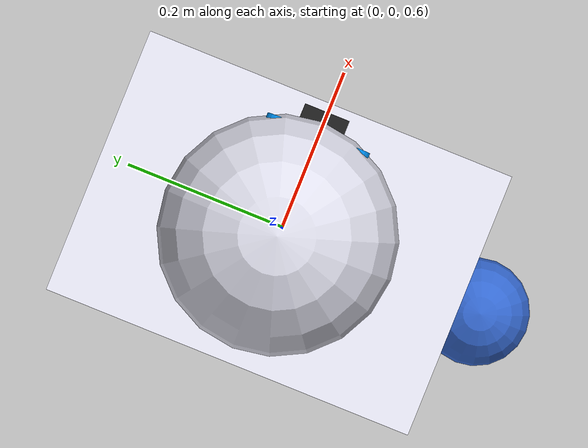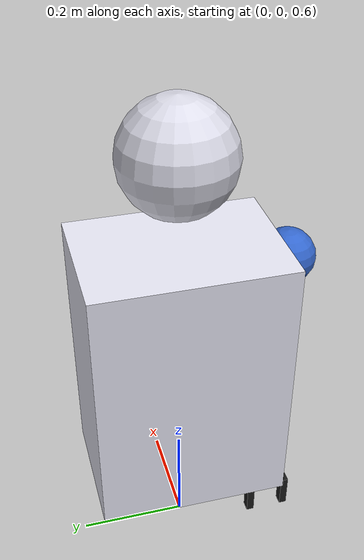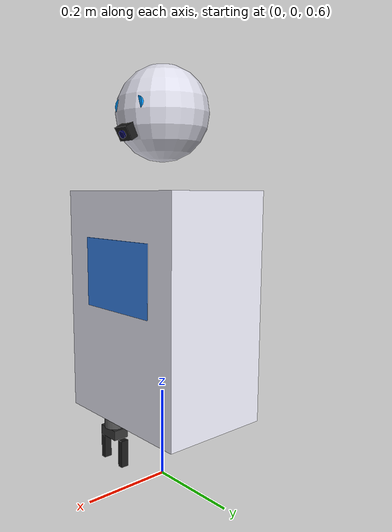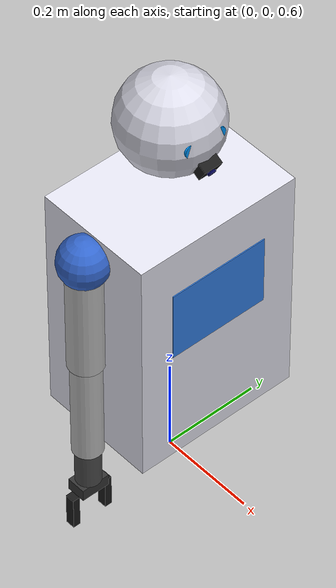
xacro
<?xml version="1.0"?>
<!--
  Main Humanoid Robot Description
  Assembles: torso + head + arm + gripper + camera + ros2_control
-->
<robot name="humanoid_robot" xmlns:xacro="http://www.ros.org/wiki/xacro">

  <!-- ==================== INCLUDES ==================== -->
  <xacro:include filename="$(find humanoid_description)/urdf/arm.xacro"/>
  <xacro:include filename="$(find humanoid_description)/urdf/gripper.xacro"/>
  <xacro:include filename="$(find humanoid_description)/urdf/camera.xacro"/>
  <xacro:include filename="$(find humanoid_description)/urdf/ros2_control.xacro"/>

  <!-- ==================== PARAMETERS ==================== -->
  <xacro:arg name="prefix" default=""/>
  <xacro:property name="prefix" value="$(arg prefix)"/>

  <!-- Torso dimensions -->
  <xacro:property name="torso_width" value="0.35"/>
  <xacro:property name="torso_depth" value="0.25"/>
  <xacro:property name="torso_height" value="0.50"/>

  <!-- Head dimensions -->
  <xacro:property name="head_radius" value="0.10"/>
  <xacro:property name="neck_height" value="0.06"/>

  <!-- ==================== MATERIALS ==================== -->
  <material name="torso_white">
    <color rgba="0.9 0.9 0.95 1.0"/>
  </material>
  <material name="torso_accent">
    <color rgba="0.2 0.5 0.9 1.0"/>
  </material>
  <material name="head_color">
    <color rgba="0.85 0.85 0.9 1.0"/>
  </material>
  <material name="eye_color">
    <color rgba="0.0 0.6 1.0 1.0"/>
  </material>

  <!-- ==================== WORLD LINK (for Gazebo) ==================== -->
  <link name="world"/>

  <joint name="world_to_base" type="fixed">
    <origin xyz="0 0 0.75" rpy="0 0 0"/>
    <parent link="world"/>
    <child link="${prefix}base_link"/>
  </joint>

  <!-- ==================== BASE LINK / TORSO ==================== -->
  <link name="${prefix}base_link">
    <!-- Main torso body -->
    <visual>
      <origin xyz="0 0 ${torso_height/2}" rpy="0 0 0"/>
      <geometry>
        <box size="${torso_depth} ${torso_width} ${torso_height}"/>
      </geometry>
      <material name="torso_white"/>
    </visual>
    <!-- Chest accent panel -->
    <visual>
      <origin xyz="${torso_depth/2 + 0.001} 0 ${torso_height * 0.65}" rpy="0 0 0"/>
      <geometry>
        <box size="0.002 ${torso_width * 0.6} ${torso_height * 0.3}"/>
      </geometry>
      <material name="torso_accent"/>
    </visual>
    <collision>
      <origin xyz="0 0 ${torso_height/2}" rpy="0 0 0"/>
      <geometry>
        <box size="${torso_depth} ${torso_width} ${torso_height}"/>
      </geometry>
    </collision>
    <inertial>
      <origin xyz="0 0 ${torso_height/2}" rpy="0 0 0"/>
      <mass value="15.0"/>
      <inertia ixx="0.5" ixy="0" ixz="0" iyy="0.4" iyz="0" izz="0.3"/>
    </inertial>
  </link>

  <!-- ==================== NECK + HEAD ==================== -->
  <joint name="${prefix}neck_joint" type="fixed">
    <origin xyz="0 0 ${torso_height + neck_height}" rpy="0 0 0"/>
    <parent link="${prefix}base_link"/>
    <child link="${prefix}head_link"/>
  </joint>

  <link name="${prefix}head_link">
    <!-- Head sphere -->
    <visual>
      <origin xyz="0 0 ${head_radius}" rpy="0 0 0"/>
      <geometry>
        <sphere radius="${head_radius}"/>
      </geometry>
      <material name="head_color"/>
    </visual>
    <!-- Left eye -->
    <visual>
      <origin xyz="${head_radius * 0.85} ${head_radius * 0.3} ${head_radius * 1.1}" rpy="0 ${pi/2} 0"/>
      <geometry>
        <cylinder radius="0.015" length="0.01"/>
      </geometry>
      <material name="eye_color"/>
    </visual>
    <!-- Right eye -->
    <visual>
      <origin xyz="${head_radius * 0.85} ${-head_radius * 0.3} ${head_radius * 1.1}" rpy="0 ${pi/2} 0"/>
      <geometry>
        <cylinder radius="0.015" length="0.01"/>
      </geometry>
      <material name="eye_color"/>
    </visual>
    <collision>
      <origin xyz="0 0 ${head_radius}" rpy="0 0 0"/>
      <geometry>
        <sphere radius="${head_radius}"/>
      </geometry>
    </collision>
    <inertial>
      <origin xyz="0 0 ${head_radius}" rpy="0 0 0"/>
      <mass value="2.0"/>
      <inertia ixx="0.01" ixy="0" ixz="0" iyy="0.01" iyz="0" izz="0.01"/>
    </inertial>
  </link>

  <!-- ==================== RIGHT ARM (attached to right shoulder) ==================== -->
  <xacro:humanoid_arm prefix="${prefix}" parent_link="${prefix}base_link">
    <origin xyz="0 ${-(torso_width/2 + 0.02)} ${torso_height - 0.05}" rpy="0 0 0"/>
  </xacro:humanoid_arm>

  <!-- ==================== GRIPPER (attached to arm tool0) ==================== -->
  <xacro:humanoid_gripper prefix="${prefix}" parent_link="${prefix}tool0">
    <origin xyz="0 0 0" rpy="0 0 0"/>
  </xacro:humanoid_gripper>

  <!-- ==================== CAMERA (on head, looking forward-down) ==================== -->
  <xacro:humanoid_camera prefix="${prefix}" parent_link="${prefix}head_link">
    <origin xyz="${head_radius * 0.9} 0 ${head_radius * 0.6}" rpy="0 ${pi/6} 0"/>
  </xacro:humanoid_camera>

  <!-- ==================== ROS2 CONTROL ==================== -->
  <xacro:humanoid_ros2_control prefix="${prefix}"/>

  <!-- ==================== GAZEBO PLUGIN ==================== -->
  <gazebo>
    <plugin filename="gz_ros2_control-system" name="gz_ros2_control::GazeboSimROS2ControlPlugin">
      <parameters>$(find humanoid_gazebo)/config/controllers.yaml</parameters>
    </plugin>
  </gazebo>

  <!-- ==================== GAZEBO MATERIALS ==================== -->
  <gazebo reference="${prefix}base_link">
    <visual>
      <material>
        <ambient>0.9 0.9 0.95 1.0</ambient>
        <diffuse>0.9 0.9 0.95 1.0</diffuse>
        <specular>0.5 0.5 0.5 1.0</specular>
      </material>
    </visual>
  </gazebo>

  <gazebo reference="${prefix}head_link">
    <visual>
      <material>
        <ambient>0.85 0.85 0.9 1.0</ambient>
        <diffuse>0.85 0.85 0.9 1.0</diffuse>
      </material>
    </visual>
  </gazebo>

  <gazebo reference="${prefix}upper_arm_link">
    <visual>
      <material>
        <ambient>0.75 0.75 0.75 1.0</ambient>
        <diffuse>0.75 0.75 0.75 1.0</diffuse>
        <specular>0.6 0.6 0.6 1.0</specular>
      </material>
    </visual>
  </gazebo>

  <gazebo reference="${prefix}forearm_link">
    <visual>
      <material>
        <ambient>0.75 0.75 0.75 1.0</ambient>
        <diffuse>0.75 0.75 0.75 1.0</diffuse>
        <specular>0.6 0.6 0.6 1.0</specular>
      </material>
    </visual>
  </gazebo>

  <!-- Gripper finger friction for grasping -->
  <gazebo reference="${prefix}left_finger_link">
    <collision>
      <surface>
        <friction>
          <ode>
            <mu>1.0</mu>
            <mu2>1.0</mu2>
          </ode>
        </friction>
      </surface>
    </collision>
  </gazebo>

  <gazebo reference="${prefix}right_finger_link">
    <collision>
      <surface>
        <friction>
          <ode>
            <mu>1.0</mu>
            <mu2>1.0</mu2>
          </ode>
        </friction>
      </surface>
    </collision>
  </gazebo>

</robot>

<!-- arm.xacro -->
<!--
  Humanoid Robot Arm - 6-DOF Serial Manipulator
  Shoulder: pitch, roll, yaw
  Elbow: pitch
  Wrist: pitch, roll
-->
<robot xmlns:xacro="http://www.ros.org/wiki/xacro">

  <xacro:macro name="humanoid_arm" params="prefix parent_link *origin">

    <!-- ==================== MATERIALS ==================== -->
    <material name="${prefix}arm_dark_grey">
      <color rgba="0.3 0.3 0.3 1.0"/>
    </material>
    <material name="${prefix}arm_silver">
      <color rgba="0.75 0.75 0.75 1.0"/>
    </material>
    <material name="${prefix}arm_blue">
      <color rgba="0.2 0.4 0.8 1.0"/>
    </material>

    <!-- ==================== LINK PROPERTIES ==================== -->
    <xacro:property name="shoulder_radius" value="0.05"/>
    <xacro:property name="upper_arm_length" value="0.25"/>
    <xacro:property name="upper_arm_radius" value="0.035"/>
    <xacro:property name="forearm_length" value="0.22"/>
    <xacro:property name="forearm_radius" value="0.03"/>
    <xacro:property name="wrist_radius" value="0.025"/>
    <xacro:property name="wrist_length" value="0.08"/>

    <!-- ==================== SHOULDER PITCH (Joint 1) ==================== -->
    <joint name="${prefix}shoulder_pitch_joint" type="revolute">
      <xacro:insert_block name="origin"/>
      <parent link="${parent_link}"/>
      <child link="${prefix}shoulder_pitch_link"/>
      <axis xyz="0 1 0"/>
      <limit lower="${-pi}" upper="${pi}" effort="100.0" velocity="1.5"/>
      <dynamics damping="0.5" friction="0.1"/>
    </joint>

    <link name="${prefix}shoulder_pitch_link">
      <visual>
        <geometry>
          <sphere radius="${shoulder_radius}"/>
        </geometry>
        <material name="${prefix}arm_blue"/>
      </visual>
      <collision>
        <geometry>
          <sphere radius="${shoulder_radius}"/>
        </geometry>
      </collision>
      <inertial>
        <mass value="1.5"/>
        <inertia ixx="0.002" ixy="0" ixz="0" iyy="0.002" iyz="0" izz="0.002"/>
      </inertial>
    </link>

    <!-- ==================== SHOULDER ROLL (Joint 2) ==================== -->
    <joint name="${prefix}shoulder_roll_joint" type="revolute">
      <origin xyz="0 0 0" rpy="0 0 0"/>
      <parent link="${prefix}shoulder_pitch_link"/>
      <child link="${prefix}shoulder_roll_link"/>
      <axis xyz="1 0 0"/>
      <limit lower="${-pi/2}" upper="${pi/2}" effort="100.0" velocity="1.5"/>
      <dynamics damping="0.5" friction="0.1"/>
    </joint>

    <link name="${prefix}shoulder_roll_link">
      <visual>
        <origin xyz="0 0 0" rpy="0 0 0"/>
        <geometry>
          <cylinder radius="${shoulder_radius * 0.8}" length="0.04"/>
        </geometry>
        <material name="${prefix}arm_dark_grey"/>
      </visual>
      <collision>
        <geometry>
          <cylinder radius="${shoulder_radius * 0.8}" length="0.04"/>
        </geometry>
      </collision>
      <inertial>
        <mass value="0.8"/>
        <inertia ixx="0.001" ixy="0" ixz="0" iyy="0.001" iyz="0" izz="0.001"/>
      </inertial>
    </link>

    <!-- ==================== SHOULDER YAW (Joint 3) ==================== -->
    <joint name="${prefix}shoulder_yaw_joint" type="revolute">
      <origin xyz="0 0 0" rpy="0 0 0"/>
      <parent link="${prefix}shoulder_roll_link"/>
      <child link="${prefix}upper_arm_link"/>
      <axis xyz="0 0 1"/>
      <limit lower="${-pi}" upper="${pi}" effort="80.0" velocity="1.5"/>
      <dynamics damping="0.5" friction="0.1"/>
    </joint>

    <link name="${prefix}upper_arm_link">
      <visual>
        <origin xyz="0 0 ${-upper_arm_length/2}" rpy="0 0 0"/>
        <geometry>
          <cylinder radius="${upper_arm_radius}" length="${upper_arm_length}"/>
        </geometry>
        <material name="${prefix}arm_silver"/>
      </visual>
      <collision>
        <origin xyz="0 0 ${-upper_arm_length/2}" rpy="0 0 0"/>
        <geometry>
          <cylinder radius="${upper_arm_radius}" length="${upper_arm_length}"/>
        </geometry>
      </collision>
      <inertial>
        <origin xyz="0 0 ${-upper_arm_length/2}" rpy="0 0 0"/>
        <mass value="2.0"/>
        <inertia ixx="0.01" ixy="0" ixz="0" iyy="0.01" iyz="0" izz="0.002"/>
      </inertial>
    </link>

    <!-- ==================== ELBOW PITCH (Joint 4) ==================== -->
    <joint name="${prefix}elbow_pitch_joint" type="revolute">
      <origin xyz="0 0 ${-upper_arm_length}" rpy="0 0 0"/>
      <parent link="${prefix}upper_arm_link"/>
      <child link="${prefix}forearm_link"/>
      <axis xyz="0 1 0"/>
      <limit lower="0" upper="${pi * 0.85}" effort="80.0" velocity="1.5"/>
      <dynamics damping="0.3" friction="0.1"/>
    </joint>

    <link name="${prefix}forearm_link">
      <visual>
        <origin xyz="0 0 ${-forearm_length/2}" rpy="0 0 0"/>
        <geometry>
          <cylinder radius="${forearm_radius}" length="${forearm_length}"/>
        </geometry>
        <material name="${prefix}arm_silver"/>
      </visual>
      <collision>
        <origin xyz="0 0 ${-forearm_length/2}" rpy="0 0 0"/>
        <geometry>
          <cylinder radius="${forearm_radius}" length="${forearm_length}"/>
        </geometry>
      </collision>
      <inertial>
        <origin xyz="0 0 ${-forearm_length/2}" rpy="0 0 0"/>
        <mass value="1.5"/>
        <inertia ixx="0.006" ixy="0" ixz="0" iyy="0.006" iyz="0" izz="0.001"/>
      </inertial>
    </link>

    <!-- ==================== WRIST PITCH (Joint 5) ==================== -->
    <joint name="${prefix}wrist_pitch_joint" type="revolute">
      <origin xyz="0 0 ${-forearm_length}" rpy="0 0 0"/>
      <parent link="${prefix}forearm_link"/>
      <child link="${prefix}wrist_pitch_link"/>
      <axis xyz="0 1 0"/>
      <limit lower="${-pi/2}" upper="${pi/2}" effort="40.0" velocity="2.0"/>
      <dynamics damping="0.2" friction="0.05"/>
    </joint>

    <link name="${prefix}wrist_pitch_link">
      <visual>
        <geometry>
          <sphere radius="${wrist_radius}"/>
        </geometry>
        <material name="${prefix}arm_blue"/>
      </visual>
      <collision>
        <geometry>
          <sphere radius="${wrist_radius}"/>
        </geometry>
      </collision>
      <inertial>
        <mass value="0.5"/>
        <inertia ixx="0.0003" ixy="0" ixz="0" iyy="0.0003" iyz="0" izz="0.0003"/>
      </inertial>
    </link>

    <!-- ==================== WRIST ROLL (Joint 6) ==================== -->
    <joint name="${prefix}wrist_roll_joint" type="revolute">
      <origin xyz="0 0 0" rpy="0 0 0"/>
      <parent link="${prefix}wrist_pitch_link"/>
      <child link="${prefix}wrist_roll_link"/>
      <axis xyz="0 0 1"/>
      <limit lower="${-pi}" upper="${pi}" effort="20.0" velocity="2.5"/>
      <dynamics damping="0.1" friction="0.05"/>
    </joint>

    <link name="${prefix}wrist_roll_link">
      <visual>
        <origin xyz="0 0 ${-wrist_length/2}" rpy="0 0 0"/>
        <geometry>
          <cylinder radius="${wrist_radius}" length="${wrist_length}"/>
        </geometry>
        <material name="${prefix}arm_dark_grey"/>
      </visual>
      <collision>
        <origin xyz="0 0 ${-wrist_length/2}" rpy="0 0 0"/>
        <geometry>
          <cylinder radius="${wrist_radius}" length="${wrist_length}"/>
        </geometry>
      </collision>
      <inertial>
        <origin xyz="0 0 ${-wrist_length/2}" rpy="0 0 0"/>
        <mass value="0.3"/>
        <inertia ixx="0.0002" ixy="0" ixz="0" iyy="0.0002" iyz="0" izz="0.0001"/>
      </inertial>
    </link>

    <!-- Tool center point (end effector mounting point) -->
    <joint name="${prefix}tool0_joint" type="fixed">
      <origin xyz="0 0 ${-wrist_length}" rpy="0 0 0"/>
      <parent link="${prefix}wrist_roll_link"/>
      <child link="${prefix}tool0"/>
    </joint>

    <link name="${prefix}tool0"/>

  </xacro:macro>
</robot>

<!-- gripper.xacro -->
<!--
  2-Finger Parallel Gripper
  Prismatic joints for open/close
-->
<robot xmlns:xacro="http://www.ros.org/wiki/xacro">

  <xacro:macro name="humanoid_gripper" params="prefix parent_link *origin">

    <!-- ==================== PROPERTIES ==================== -->
    <xacro:property name="palm_width" value="0.06"/>
    <xacro:property name="palm_depth" value="0.04"/>
    <xacro:property name="palm_height" value="0.025"/>
    <xacro:property name="finger_length" value="0.07"/>
    <xacro:property name="finger_width" value="0.015"/>
    <xacro:property name="finger_depth" value="0.02"/>
    <xacro:property name="finger_max_open" value="0.04"/>

    <!-- ==================== MATERIALS ==================== -->
    <material name="${prefix}gripper_dark">
      <color rgba="0.2 0.2 0.2 1.0"/>
    </material>
    <material name="${prefix}gripper_rubber">
      <color rgba="0.1 0.1 0.1 1.0"/>
    </material>

    <!-- ==================== PALM ==================== -->
    <joint name="${prefix}gripper_base_joint" type="fixed">
      <xacro:insert_block name="origin"/>
      <parent link="${parent_link}"/>
      <child link="${prefix}gripper_base_link"/>
    </joint>

    <link name="${prefix}gripper_base_link">
      <visual>
        <origin xyz="0 0 ${-palm_height/2}" rpy="0 0 0"/>
        <geometry>
          <box size="${palm_depth} ${palm_width} ${palm_height}"/>
        </geometry>
        <material name="${prefix}gripper_dark"/>
      </visual>
      <collision>
        <origin xyz="0 0 ${-palm_height/2}" rpy="0 0 0"/>
        <geometry>
          <box size="${palm_depth} ${palm_width} ${palm_height}"/>
        </geometry>
      </collision>
      <inertial>
        <origin xyz="0 0 ${-palm_height/2}" rpy="0 0 0"/>
        <mass value="0.3"/>
        <inertia ixx="0.0001" ixy="0" ixz="0" iyy="0.0001" iyz="0" izz="0.0001"/>
      </inertial>
    </link>

    <!-- ==================== LEFT FINGER ==================== -->
    <joint name="${prefix}left_finger_joint" type="prismatic">
      <origin xyz="0 ${palm_width/2} ${-palm_height}" rpy="0 0 0"/>
      <parent link="${prefix}gripper_base_link"/>
      <child link="${prefix}left_finger_link"/>
      <axis xyz="0 1 0"/>
      <limit lower="0" upper="${finger_max_open}" effort="20.0" velocity="0.5"/>
      <dynamics damping="0.1" friction="0.05"/>
    </joint>

    <link name="${prefix}left_finger_link">
      <visual>
        <origin xyz="0 ${finger_width/2} ${-finger_length/2}" rpy="0 0 0"/>
        <geometry>
          <box size="${finger_depth} ${finger_width} ${finger_length}"/>
        </geometry>
        <material name="${prefix}gripper_rubber"/>
      </visual>
      <collision>
        <origin xyz="0 ${finger_width/2} ${-finger_length/2}" rpy="0 0 0"/>
        <geometry>
          <box size="${finger_depth} ${finger_width} ${finger_length}"/>
        </geometry>
      </collision>
      <inertial>
        <origin xyz="0 ${finger_width/2} ${-finger_length/2}" rpy="0 0 0"/>
        <mass value="0.05"/>
        <inertia ixx="0.00001" ixy="0" ixz="0" iyy="0.00001" iyz="0" izz="0.00001"/>
      </inertial>
    </link>

    <!-- Left finger tip (for grasp contact) -->
    <joint name="${prefix}left_finger_tip_joint" type="fixed">
      <origin xyz="0 ${finger_width/2} ${-finger_length}" rpy="0 0 0"/>
      <parent link="${prefix}left_finger_link"/>
      <child link="${prefix}left_finger_tip"/>
    </joint>
    <link name="${prefix}left_finger_tip"/>

    <!-- ==================== RIGHT FINGER ==================== -->
    <joint name="${prefix}right_finger_joint" type="prismatic">
      <origin xyz="0 ${-palm_width/2} ${-palm_height}" rpy="0 0 0"/>
      <parent link="${prefix}gripper_base_link"/>
      <child link="${prefix}right_finger_link"/>
      <axis xyz="0 -1 0"/>
      <limit lower="0" upper="${finger_max_open}" effort="20.0" velocity="0.5"/>
      <mimic joint="${prefix}left_finger_joint" multiplier="1.0" offset="0.0"/>
      <dynamics damping="0.1" friction="0.05"/>
    </joint>

    <link name="${prefix}right_finger_link">
      <visual>
        <origin xyz="0 ${-finger_width/2} ${-finger_length/2}" rpy="0 0 0"/>
        <geometry>
          <box size="${finger_depth} ${finger_width} ${finger_length}"/>
        </geometry>
        <material name="${prefix}gripper_rubber"/>
      </visual>
      <collision>
        <origin xyz="0 ${-finger_width/2} ${-finger_length/2}" rpy="0 0 0"/>
        <geometry>
          <box size="${finger_depth} ${finger_width} ${finger_length}"/>
        </geometry>
      </collision>
      <inertial>
        <origin xyz="0 ${-finger_width/2} ${-finger_length/2}" rpy="0 0 0"/>
        <mass value="0.05"/>
        <inertia ixx="0.00001" ixy="0" ixz="0" iyy="0.00001" iyz="0" izz="0.00001"/>
      </inertial>
    </link>

    <!-- Grasp frame (center between finger tips) -->
    <joint name="${prefix}grasp_frame_joint" type="fixed">
      <origin xyz="0 0 ${-palm_height - finger_length}" rpy="0 0 0"/>
      <parent link="${prefix}gripper_base_link"/>
      <child link="${prefix}grasp_frame"/>
    </joint>
    <link name="${prefix}grasp_frame"/>

  </xacro:macro>
</robot>

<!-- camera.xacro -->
<!--
  RGB-D Camera Sensor for Gazebo Harmonic
  Provides color image + depth image for object detection
-->
<robot xmlns:xacro="http://www.ros.org/wiki/xacro">

  <xacro:macro name="humanoid_camera" params="prefix parent_link *origin">

    <!-- ==================== PROPERTIES ==================== -->
    <xacro:property name="camera_width" value="0.04"/>
    <xacro:property name="camera_height" value="0.03"/>
    <xacro:property name="camera_depth" value="0.03"/>

    <!-- ==================== MATERIALS ==================== -->
    <material name="${prefix}camera_body">
      <color rgba="0.1 0.1 0.1 1.0"/>
    </material>
    <material name="${prefix}camera_lens">
      <color rgba="0.0 0.0 0.3 1.0"/>
    </material>

    <!-- ==================== CAMERA LINK ==================== -->
    <joint name="${prefix}camera_joint" type="fixed">
      <xacro:insert_block name="origin"/>
      <parent link="${parent_link}"/>
      <child link="${prefix}camera_link"/>
    </joint>

    <link name="${prefix}camera_link">
      <visual>
        <geometry>
          <box size="${camera_depth} ${camera_width} ${camera_height}"/>
        </geometry>
        <material name="${prefix}camera_body"/>
      </visual>
      <collision>
        <geometry>
          <box size="${camera_depth} ${camera_width} ${camera_height}"/>
        </geometry>
      </collision>
      <inertial>
        <mass value="0.05"/>
        <inertia ixx="0.00001" ixy="0" ixz="0" iyy="0.00001" iyz="0" izz="0.00001"/>
      </inertial>
    </link>

    <!-- Camera lens (cosmetic) -->
    <joint name="${prefix}camera_lens_joint" type="fixed">
      <origin xyz="${camera_depth/2 + 0.002} 0 0" rpy="0 ${pi/2} 0"/>
      <parent link="${prefix}camera_link"/>
      <child link="${prefix}camera_lens_link"/>
    </joint>

    <link name="${prefix}camera_lens_link">
      <visual>
        <geometry>
          <cylinder radius="0.008" length="0.005"/>
        </geometry>
        <material name="${prefix}camera_lens"/>
      </visual>
      <inertial>
        <mass value="0.001"/>
        <inertia ixx="0.000001" ixy="0" ixz="0" iyy="0.000001" iyz="0" izz="0.000001"/>
      </inertial>
    </link>

    <!-- Optical frame (Z forward, X right, Y down — OpenCV convention) -->
    <joint name="${prefix}camera_optical_joint" type="fixed">
      <origin xyz="0 0 0" rpy="${-pi/2} 0 ${-pi/2}"/>
      <parent link="${prefix}camera_link"/>
      <child link="${prefix}camera_optical_frame"/>
    </joint>
    <link name="${prefix}camera_optical_frame"/>

    <!-- ==================== GAZEBO HARMONIC SENSOR ==================== -->
    <gazebo reference="${prefix}camera_link">
      <sensor name="${prefix}rgbd_camera" type="rgbd_camera">
        <always_on>true</always_on>
        <update_rate>30</update_rate>
        <camera>
          <horizontal_fov>1.047</horizontal_fov>
          <image>
            <width>640</width>
            <height>480</height>
            <format>R8G8B8</format>
          </image>
          <clip>
            <near>0.1</near>
            <far>10.0</far>
          </clip>
          <depth_camera>
            <clip>
              <near>0.1</near>
              <far>10.0</far>
            </clip>
          </depth_camera>
        </camera>
        <topic>${prefix}camera</topic>
        <gz_frame_id>${prefix}camera_optical_frame</gz_frame_id>
      </sensor>
    </gazebo>

  </xacro:macro>
</robot>
